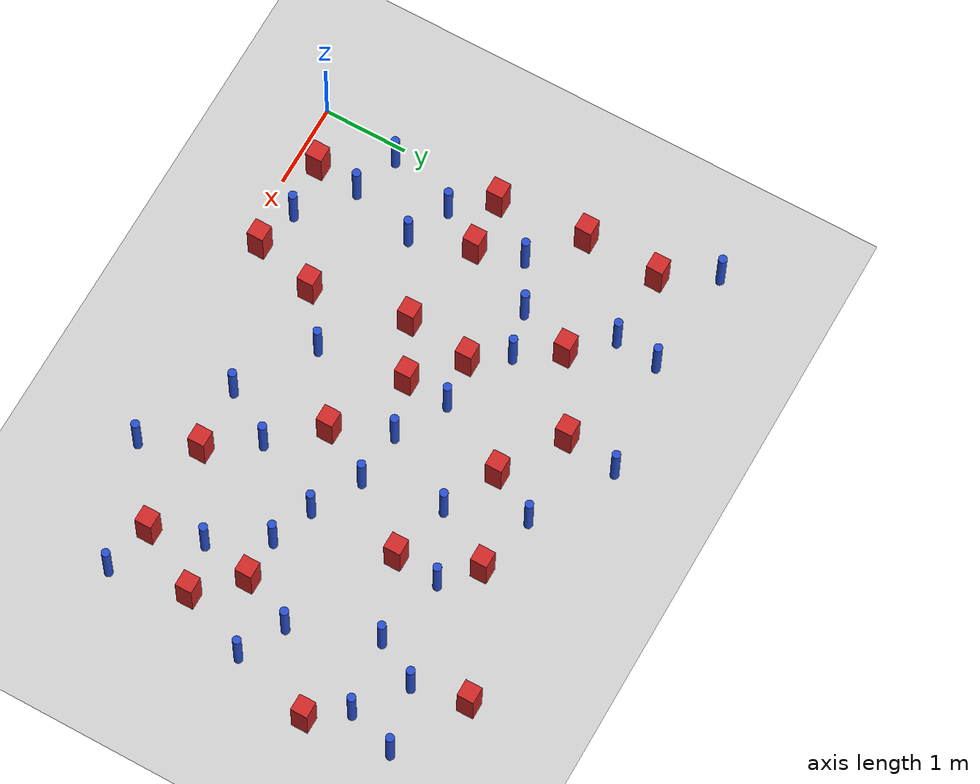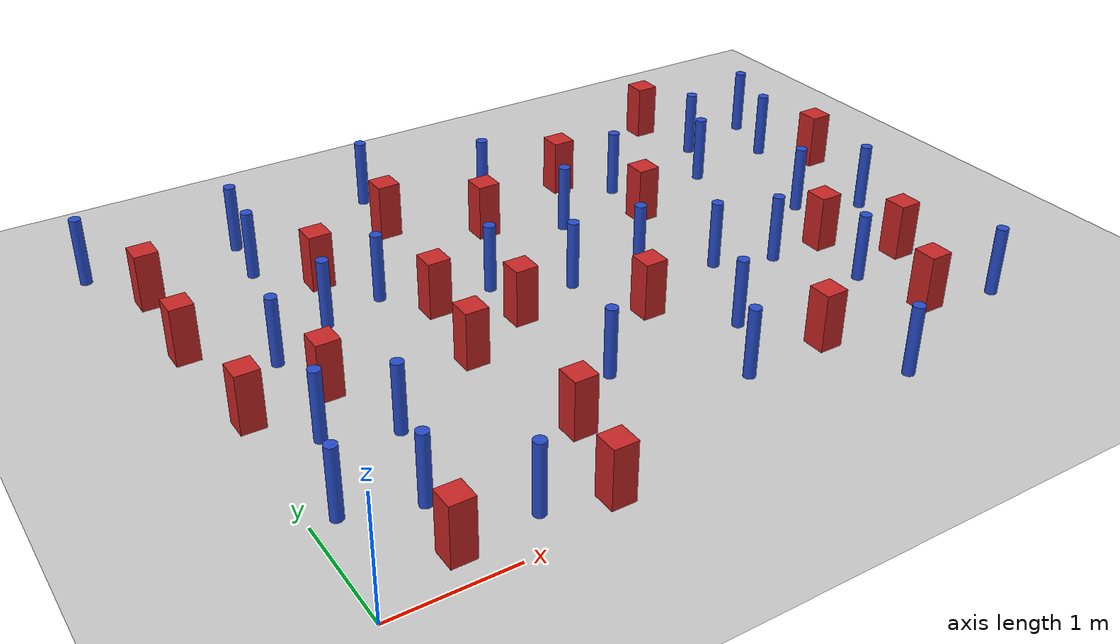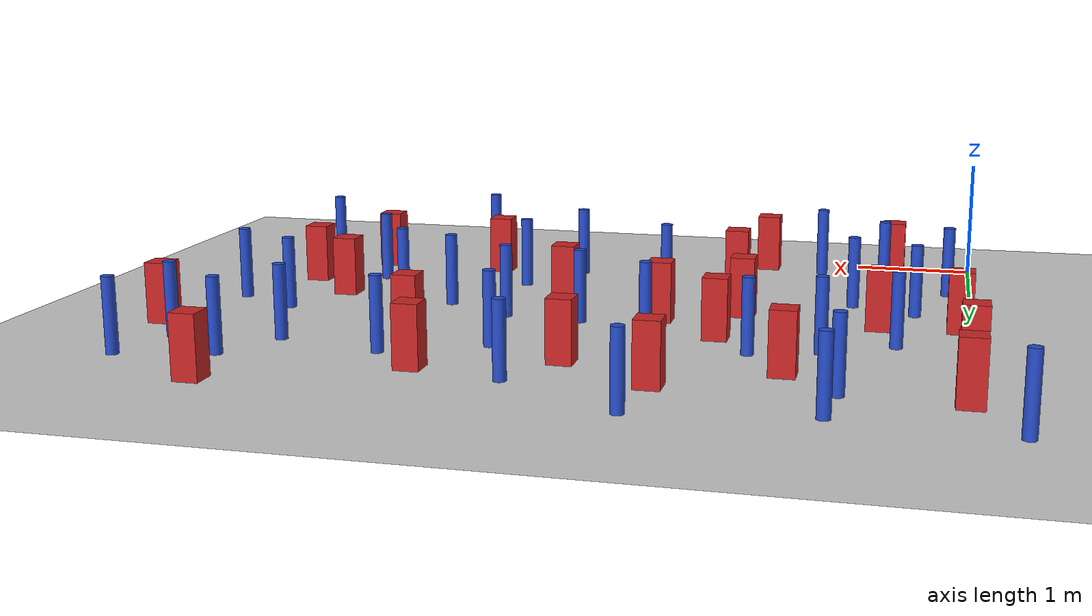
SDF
<sdf version="1.6">
 <world name="default">
  <model name="ground_plane">
   <static>1</static>
   <link name="link">
    <collision name="collision">
     <geometry><plane><normal>0 0 1</normal><size>100 100</size></plane></geometry>
     <surface><friction><ode><mu>100</mu><mu2>50</mu2></ode></friction></surface>
    </collision>
    <visual name="visual">
     <cast_shadows>0</cast_shadows>
     <geometry><plane><normal>0 0 1</normal><size>100 100</size></plane></geometry>
     <material>
      <ambient>1.0 1.0 1.0 1.0</ambient>
      <diffuse>0.8 0.8 0.8 1.0</diffuse>
      <specular>0.01 0.01 0.01 1.000000</specular>
     </material>
    </visual>
   </link>
  </model>
  <model name="square_post_obstacle2">
   <static>true</static>
   <pose>5.34780435043 0.85388809612 8.22691968438e-08 7.2212513382e-06 -7.54495500217e-07 2.29674213826e-05</pose>
   <link name="link">
    <pose>0 0 0.25 0 -0 0</pose>
    <inertial>
     <mass>100</mass>
     <inertia>
      <ixx>0.166667</ixx>
      <ixy>0</ixy>
      <ixz>0</ixz>
      <iyy>0.166667</iyy>
      <iyz>0</iyz>
      <izz>0.166667</izz>
     </inertia>
    </inertial>
    <collision name="collision"><geometry><box><size>.2 .2 .5</size></box></geometry></collision>
    <visual name="visual">
     <geometry><box><size>.2 .2 .5</size></box></geometry>
     <material>
      <script><name>Gazebo/Red</name><uri>file://media/materials/scripts/gazebo.material</uri></script>
     </material>
    </visual>
   </link>
  </model>
  <model name="pole_obstacle4">
   <static>true</static>
   <pose>0.192153176092 0.988772014604 2.88873142074e-08 -9.90536690114e-09 4.60219948983e-07 -1.20965994964e-07</pose>
   <link name="link">
    <pose>0 0 0.3 0 -0 0</pose>
    <inertial>
     <mass>1</mass>
     <inertia><ixx>0.145833</ixx><ixy>0</ixy><ixz>0</ixz><iyy>0.145833</iyy><iyz>0</iyz><izz>0.125</izz></inertia>
    </inertial>
    <collision name="collision">
     <geometry><cylinder><radius>0.05</radius><length>.6</length></cylinder></geometry>
    </collision>
    <visual name="visual">
     <geometry><cylinder><radius>0.05</radius><length>.6</length></cylinder></geometry>
     <material>
      <script><name>Gazebo/Blue</name><uri>file://media/materials/scripts/gazebo.material</uri></script>
     </material>
    </visual>
   </link>
  </model>
  <model name="square_post_obstacle11">
   <static>true</static>
   <pose>5.31267235231 2.07348907233 8.22691968438e-08 7.2212513382e-06 -7.54495500217e-07 2.29674213826e-05</pose>
   <link name="link">
    <pose>0 0 0.25 0 -0 0</pose>
    <inertial>
     <mass>100</mass>
     <inertia>
      <ixx>0.166667</ixx>
      <ixy>0</ixy>
      <ixz>0</ixz>
      <iyy>0.166667</iyy>
      <iyz>0</iyz>
      <izz>0.166667</izz>
     </inertia>
    </inertial>
    <collision name="collision"><geometry><box><size>.2 .2 .5</size></box></geometry></collision>
    <visual name="visual">
     <geometry><box><size>.2 .2 .5</size></box></geometry>
     <material>
      <script><name>Gazebo/Red</name><uri>file://media/materials/scripts/gazebo.material</uri></script>
     </material>
    </visual>
   </link>
  </model>
  <model name="pole_obstacle8">
   <static>true</static>
   <pose>3.58204514085 3.50767078922 2.88873142074e-08 -9.90536690232e-09 4.6021994898e-07 -1.20965994968e-07</pose>
   <link name="link">
    <pose>0 0 0.3 0 -0 0</pose>
    <inertial>
     <mass>1</mass>
     <inertia><ixx>0.145833</ixx><ixy>0</ixy><ixz>0</ixz><iyy>0.145833</iyy><iyz>0</iyz><izz>0.125</izz></inertia>
    </inertial>
    <collision name="collision">
     <geometry><cylinder><radius>0.05</radius><length>.6</length></cylinder></geometry>
    </collision>
    <visual name="visual">
     <geometry><cylinder><radius>0.05</radius><length>.6</length></cylinder></geometry>
     <material>
      <script><name>Gazebo/Blue</name><uri>file://media/materials/scripts/gazebo.material</uri></script>
     </material>
    </visual>
   </link>
  </model>
  <model name="square_post_obstacle22">
   <static>true</static>
   <pose>2.0303652165 0.946268241063 8.22691968438e-08 7.2212513382e-06 -7.54495500217e-07 2.29674213826e-05</pose>
   <link name="link">
    <pose>0 0 0.25 0 -0 0</pose>
    <inertial>
     <mass>100</mass>
     <inertia>
      <ixx>0.166667</ixx>
      <ixy>0</ixy>
      <ixz>0</ixz>
      <iyy>0.166667</iyy>
      <iyz>0</iyz>
      <izz>0.166667</izz>
     </inertia>
    </inertial>
    <collision name="collision"><geometry><box><size>.2 .2 .5</size></box></geometry></collision>
    <visual name="visual">
     <geometry><box><size>.2 .2 .5</size></box></geometry>
     <material>
      <script><name>Gazebo/Red</name><uri>file://media/materials/scripts/gazebo.material</uri></script>
     </material>
    </visual>
   </link>
  </model>
  <model name="pole_obstacle15">
   <static>true</static>
   <pose>5.95249702064 0.702436298179 2.88873142074e-08 -9.90536689837e-09 4.60219948989e-07 -1.2096599496e-07</pose>
   <link name="link">
    <pose>0 0 0.3 0 -0 0</pose>
    <inertial>
     <mass>1</mass>
     <inertia><ixx>0.145833</ixx><ixy>0</ixy><ixz>0</ixz><iyy>0.145833</iyy><iyz>0</iyz><izz>0.125</izz></inertia>
    </inertial>
    <collision name="collision">
     <geometry><cylinder><radius>0.05</radius><length>.6</length></cylinder></geometry>
    </collision>
    <visual name="visual">
     <geometry><cylinder><radius>0.05</radius><length>.6</length></cylinder></geometry>
     <material>
      <script><name>Gazebo/Blue</name><uri>file://media/materials/scripts/gazebo.material</uri></script>
     </material>
    </visual>
   </link>
  </model>
  <model name="pole_obstacle23">
   <static>true</static>
   <pose>3.24662569594 4.36869033312 2.88873142074e-08 -9.90536689859e-09 4.60219948989e-07 -1.20965994961e-07</pose>
   <link name="link">
    <pose>0 0 0.3 0 -0 0</pose>
    <inertial>
     <mass>1</mass>
     <inertia><ixx>0.145833</ixx><ixy>0</ixy><ixz>0</ixz><iyy>0.145833</iyy><iyz>0</iyz><izz>0.125</izz></inertia>
    </inertial>
    <collision name="collision">
     <geometry><cylinder><radius>0.05</radius><length>.6</length></cylinder></geometry>
    </collision>
    <visual name="visual">
     <geometry><cylinder><radius>0.05</radius><length>.6</length></cylinder></geometry>
     <material>
      <script><name>Gazebo/Blue</name><uri>file://media/materials/scripts/gazebo.material</uri></script>
     </material>
    </visual>
   </link>
  </model>
  <model name="pole_obstacle24">
   <static>true</static>
   <pose>1.32390160351 0.333941000089 2.88873142074e-08 -9.90536689733e-09 4.60219948992e-07 -1.20965994959e-07</pose>
   <link name="link">
    <pose>0 0 0.3 0 -0 0</pose>
    <inertial>
     <mass>1</mass>
     <inertia><ixx>0.145833</ixx><ixy>0</ixy><ixz>0</ixz><iyy>0.145833</iyy><iyz>0</iyz><izz>0.125</izz></inertia>
    </inertial>
    <collision name="collision">
     <geometry><cylinder><radius>0.05</radius><length>.6</length></cylinder></geometry>
    </collision>
    <visual name="visual">
     <geometry><cylinder><radius>0.05</radius><length>.6</length></cylinder></geometry>
     <material>
      <script><name>Gazebo/Blue</name><uri>file://media/materials/scripts/gazebo.material</uri></script>
     </material>
    </visual>
   </link>
  </model>
  <model name="square_post_obstacle36">
   <static>true</static>
   <pose>4.30566705517 3.32903848314 8.22691968438e-08 7.2212513382e-06 -7.54495500217e-07 2.29674213826e-05</pose>
   <link name="link">
    <pose>0 0 0.25 0 -0 0</pose>
    <inertial>
     <mass>100</mass>
     <inertia>
      <ixx>0.166667</ixx>
      <ixy>0</ixy>
      <ixz>0</ixz>
      <iyy>0.166667</iyy>
      <iyz>0</iyz>
      <izz>0.166667</izz>
     </inertia>
    </inertial>
    <collision name="collision"><geometry><box><size>.2 .2 .5</size></box></geometry></collision>
    <visual name="visual">
     <geometry><box><size>.2 .2 .5</size></box></geometry>
     <material>
      <script><name>Gazebo/Red</name><uri>file://media/materials/scripts/gazebo.material</uri></script>
     </material>
    </visual>
   </link>
  </model>
  <model name="pole_obstacle38">
   <static>true</static>
   <pose>4.29586392627 2.26824871672 2.88873142074e-08 -9.90536690245e-09 4.6021994898e-07 -1.20965994966e-07</pose>
   <link name="link">
    <pose>0 0 0.3 0 -0 0</pose>
    <inertial>
     <mass>1</mass>
     <inertia><ixx>0.145833</ixx><ixy>0</ixy><ixz>0</ixz><iyy>0.145833</iyy><iyz>0</iyz><izz>0.125</izz></inertia>
    </inertial>
    <collision name="collision">
     <geometry><cylinder><radius>0.05</radius><length>.6</length></cylinder></geometry>
    </collision>
    <visual name="visual">
     <geometry><cylinder><radius>0.05</radius><length>.6</length></cylinder></geometry>
     <material>
      <script><name>Gazebo/Blue</name><uri>file://media/materials/scripts/gazebo.material</uri></script>
     </material>
    </visual>
   </link>
  </model>
  <model name="pole_obstacle39">
   <static>true</static>
   <pose>0.965273400514 1.58977351695 2.88873142074e-08 -9.90536690202e-09 4.6021994898e-07 -1.20965994965e-07</pose>
   <link name="link">
    <pose>0 0 0.3 0 -0 0</pose>
    <inertial>
     <mass>1</mass>
     <inertia><ixx>0.145833</ixx><ixy>0</ixy><ixz>0</ixz><iyy>0.145833</iyy><iyz>0</iyz><izz>0.125</izz></inertia>
    </inertial>
    <collision name="collision">
     <geometry><cylinder><radius>0.05</radius><length>.6</length></cylinder></geometry>
    </collision>
    <visual name="visual">
     <geometry><cylinder><radius>0.05</radius><length>.6</length></cylinder></geometry>
     <material>
      <script><name>Gazebo/Blue</name><uri>file://media/materials/scripts/gazebo.material</uri></script>
     </material>
    </visual>
   </link>
  </model>
  <model name="square_post_obstacle47">
   <static>true</static>
   <pose>0.721170439432 2.29256865752 8.22691968438e-08 7.2212513382e-06 -7.54495500217e-07 2.29674213826e-05</pose>
   <link name="link">
    <pose>0 0 0.25 0 -0 0</pose>
    <inertial>
     <mass>100</mass>
     <inertia>
      <ixx>0.166667</ixx>
      <ixy>0</ixy>
      <ixz>0</ixz>
      <iyy>0.166667</iyy>
      <iyz>0</iyz>
      <izz>0.166667</izz>
     </inertia>
    </inertial>
    <collision name="collision"><geometry><box><size>.2 .2 .5</size></box></geometry></collision>
    <visual name="visual">
     <geometry><box><size>.2 .2 .5</size></box></geometry>
     <material>
      <script><name>Gazebo/Red</name><uri>file://media/materials/scripts/gazebo.material</uri></script>
     </material>
    </visual>
   </link>
  </model>
  <model name="pole_obstacle52">
   <static>true</static>
   <pose>4.51796822195 0.217038154132 2.88873142074e-08 -9.90536689438e-09 4.60219948999e-07 -1.20965994956e-07</pose>
   <link name="link">
    <pose>0 0 0.3 0 -0 0</pose>
    <inertial>
     <mass>1</mass>
     <inertia><ixx>0.145833</ixx><ixy>0</ixy><ixz>0</ixz><iyy>0.145833</iyy><iyz>0</iyz><izz>0.125</izz></inertia>
    </inertial>
    <collision name="collision">
     <geometry><cylinder><radius>0.05</radius><length>.6</length></cylinder></geometry>
    </collision>
    <visual name="visual">
     <geometry><cylinder><radius>0.05</radius><length>.6</length></cylinder></geometry>
     <material>
      <script><name>Gazebo/Blue</name><uri>file://media/materials/scripts/gazebo.material</uri></script>
     </material>
    </visual>
   </link>
  </model>
  <model name="square_post_obstacle60">
   <static>true</static>
   <pose>3.37651391756 1.96179915454 8.22691968438e-08 7.2212513382e-06 -7.54495500217e-07 2.29674213826e-05</pose>
   <link name="link">
    <pose>0 0 0.25 0 -0 0</pose>
    <inertial>
     <mass>100</mass>
     <inertia>
      <ixx>0.166667</ixx>
      <ixy>0</ixy>
      <ixz>0</ixz>
      <iyy>0.166667</iyy>
      <iyz>0</iyz>
      <izz>0.166667</izz>
     </inertia>
    </inertial>
    <collision name="collision"><geometry><box><size>.2 .2 .5</size></box></geometry></collision>
    <visual name="visual">
     <geometry><box><size>.2 .2 .5</size></box></geometry>
     <material>
      <script><name>Gazebo/Red</name><uri>file://media/materials/scripts/gazebo.material</uri></script>
     </material>
    </visual>
   </link>
  </model>
  <model name="pole_obstacle62">
   <static>true</static>
   <pose>0.744388032798 0.809611689987 2.88873142074e-08 -9.90536689967e-09 4.60219948986e-07 -1.20965994963e-07</pose>
   <link name="link">
    <pose>0 0 0.3 0 -0 0</pose>
    <inertial>
     <mass>1</mass>
     <inertia><ixx>0.145833</ixx><ixy>0</ixy><ixz>0</ixz><iyy>0.145833</iyy><iyz>0</iyz><izz>0.125</izz></inertia>
    </inertial>
    <collision name="collision">
     <geometry><cylinder><radius>0.05</radius><length>.6</length></cylinder></geometry>
    </collision>
    <visual name="visual">
     <geometry><cylinder><radius>0.05</radius><length>.6</length></cylinder></geometry>
     <material>
      <script><name>Gazebo/Blue</name><uri>file://media/materials/scripts/gazebo.material</uri></script>
     </material>
    </visual>
   </link>
  </model>
  <model name="pole_obstacle65">
   <static>true</static>
   <pose>-0.316582740102 4.81602739654 2.88873142074e-08 -9.90536689683e-09 4.60219948993e-07 -1.20965994957e-07</pose>
   <link name="link">
    <pose>0 0 0.3 0 -0 0</pose>
    <inertial>
     <mass>1</mass>
     <inertia><ixx>0.145833</ixx><ixy>0</ixy><ixz>0</ixz><iyy>0.145833</iyy><iyz>0</iyz><izz>0.125</izz></inertia>
    </inertial>
    <collision name="collision">
     <geometry><cylinder><radius>0.05</radius><length>.6</length></cylinder></geometry>
    </collision>
    <visual name="visual">
     <geometry><cylinder><radius>0.05</radius><length>.6</length></cylinder></geometry>
     <material>
      <script><name>Gazebo/Blue</name><uri>file://media/materials/scripts/gazebo.material</uri></script>
     </material>
    </visual>
   </link>
  </model>
  <model name="square_post_obstacle68">
   <static>true</static>
   <pose>5.38333848226 4.83043084179 8.22691968438e-08 7.2212513382e-06 -7.54495500217e-07 2.29674213826e-05</pose>
   <link name="link">
    <pose>0 0 0.25 0 -0 0</pose>
    <inertial>
     <mass>100</mass>
     <inertia>
      <ixx>0.166667</ixx>
      <ixy>0</ixy>
      <ixz>0</ixz>
      <iyy>0.166667</iyy>
      <iyz>0</iyz>
      <izz>0.166667</izz>
     </inertia>
    </inertial>
    <collision name="collision"><geometry><box><size>.2 .2 .5</size></box></geometry></collision>
    <visual name="visual">
     <geometry><box><size>.2 .2 .5</size></box></geometry>
     <material>
      <script><name>Gazebo/Red</name><uri>file://media/materials/scripts/gazebo.material</uri></script>
     </material>
    </visual>
   </link>
  </model>
  <model name="pole_obstacle66">
   <static>true</static>
   <pose>0.961404379099 4.702797731 2.88873142074e-08 -9.90536689421e-09 4.60219948999e-07 -1.20965994953e-07</pose>
   <link name="link">
    <pose>0 0 0.3 0 -0 0</pose>
    <inertial>
     <mass>1</mass>
     <inertia><ixx>0.145833</ixx><ixy>0</ixy><ixz>0</ixz><iyy>0.145833</iyy><iyz>0</iyz><izz>0.125</izz></inertia>
    </inertial>
    <collision name="collision">
     <geometry><cylinder><radius>0.05</radius><length>.6</length></cylinder></geometry>
    </collision>
    <visual name="visual">
     <geometry><cylinder><radius>0.05</radius><length>.6</length></cylinder></geometry>
     <material>
      <script><name>Gazebo/Blue</name><uri>file://media/materials/scripts/gazebo.material</uri></script>
     </material>
    </visual>
   </link>
  </model>
  <model name="pole_obstacle69">
   <static>true</static>
   <pose>6.12167391186 2.41760553683 2.88873142074e-08 -9.90536690245e-09 4.6021994898e-07 -1.20965994966e-07</pose>
   <link name="link">
    <pose>0 0 0.3 0 -0 0</pose>
    <inertial>
     <mass>1</mass>
     <inertia><ixx>0.145833</ixx><ixy>0</ixy><ixz>0</ixz><iyy>0.145833</iyy><iyz>0</iyz><izz>0.125</izz></inertia>
    </inertial>
    <collision name="collision">
     <geometry><cylinder><radius>0.05</radius><length>.6</length></cylinder></geometry>
    </collision>
    <visual name="visual">
     <geometry><cylinder><radius>0.05</radius><length>.6</length></cylinder></geometry>
     <material>
      <script><name>Gazebo/Blue</name><uri>file://media/materials/scripts/gazebo.material</uri></script>
     </material>
    </visual>
   </link>
  </model>
  <model name="pole_obstacle75">
   <static>true</static>
   <pose>2.28297909926 4.90512843658 2.88873142074e-08 -9.90536689859e-09 4.60219948989e-07 -1.20965994961e-07</pose>
   <link name="link">
    <pose>0 0 0.3 0 -0 0</pose>
    <inertial>
     <mass>1</mass>
     <inertia><ixx>0.145833</ixx><ixy>0</ixy><ixz>0</ixz><iyy>0.145833</iyy><iyz>0</iyz><izz>0.125</izz></inertia>
    </inertial>
    <collision name="collision">
     <geometry><cylinder><radius>0.05</radius><length>.6</length></cylinder></geometry>
    </collision>
    <visual name="visual">
     <geometry><cylinder><radius>0.05</radius><length>.6</length></cylinder></geometry>
     <material>
      <script><name>Gazebo/Blue</name><uri>file://media/materials/scripts/gazebo.material</uri></script>
     </material>
    </visual>
   </link>
  </model>
  <model name="square_post_obstacle77">
   <static>true</static>
   <pose>1.82946089808 2.09630234504 8.22691968438e-08 7.2212513382e-06 -7.54495500217e-07 2.29674213826e-05</pose>
   <link name="link">
    <pose>0 0 0.25 0 -0 0</pose>
    <inertial>
     <mass>100</mass>
     <inertia>
      <ixx>0.166667</ixx>
      <ixy>0</ixy>
      <ixz>0</ixz>
      <iyy>0.166667</iyy>
      <iyz>0</iyz>
      <izz>0.166667</izz>
     </inertia>
    </inertial>
    <collision name="collision"><geometry><box><size>.2 .2 .5</size></box></geometry></collision>
    <visual name="visual">
     <geometry><box><size>.2 .2 .5</size></box></geometry>
     <material>
      <script><name>Gazebo/Red</name><uri>file://media/materials/scripts/gazebo.material</uri></script>
     </material>
    </visual>
   </link>
  </model>
  <model name="pole_obstacle81">
   <static>true</static>
   <pose>4.7995191095 2.08298735307 2.88873142074e-08 -9.90536690245e-09 4.6021994898e-07 -1.20965994966e-07</pose>
   <link name="link">
    <pose>0 0 0.3 0 -0 0</pose>
    <inertial>
     <mass>1</mass>
     <inertia><ixx>0.145833</ixx><ixy>0</ixy><ixz>0</ixz><iyy>0.145833</iyy><iyz>0</iyz><izz>0.125</izz></inertia>
    </inertial>
    <collision name="collision">
     <geometry><cylinder><radius>0.05</radius><length>.6</length></cylinder></geometry>
    </collision>
    <visual name="visual">
     <geometry><cylinder><radius>0.05</radius><length>.6</length></cylinder></geometry>
     <material>
      <script><name>Gazebo/Blue</name><uri>file://media/materials/scripts/gazebo.material</uri></script>
     </material>
    </visual>
   </link>
  </model>
  <model name="pole_obstacle85">
   <static>true</static>
   <pose>6.08488184216 3.79494003495 2.88873142074e-08 -9.90536690245e-09 4.6021994898e-07 -1.20965994966e-07</pose>
   <link name="link">
    <pose>0 0 0.3 0 -0 0</pose>
    <inertial>
     <mass>1</mass>
     <inertia><ixx>0.145833</ixx><ixy>0</ixy><ixz>0</ixz><iyy>0.145833</iyy><iyz>0</iyz><izz>0.125</izz></inertia>
    </inertial>
    <collision name="collision">
     <geometry><cylinder><radius>0.05</radius><length>.6</length></cylinder></geometry>
    </collision>
    <visual name="visual">
     <geometry><cylinder><radius>0.05</radius><length>.6</length></cylinder></geometry>
     <material>
      <script><name>Gazebo/Blue</name><uri>file://media/materials/scripts/gazebo.material</uri></script>
     </material>
    </visual>
   </link>
  </model>
  <model name="square_post_obstacle81">
   <static>true</static>
   <pose>2.19977318966 4.26711498543 8.22691968438e-08 7.2212513382e-06 -7.54495500217e-07 2.29674213826e-05</pose>
   <link name="link">
    <pose>0 0 0.25 0 -0 0</pose>
    <inertial>
     <mass>100</mass>
     <inertia>
      <ixx>0.166667</ixx>
      <ixy>0</ixy>
      <ixz>0</ixz>
      <iyy>0.166667</iyy>
      <iyz>0</iyz>
      <izz>0.166667</izz>
     </inertia>
    </inertial>
    <collision name="collision"><geometry><box><size>.2 .2 .5</size></box></geometry></collision>
    <visual name="visual">
     <geometry><box><size>.2 .2 .5</size></box></geometry>
     <material>
      <script><name>Gazebo/Red</name><uri>file://media/materials/scripts/gazebo.material</uri></script>
     </material>
    </visual>
   </link>
  </model>
  <model name="pole_obstacle94">
   <static>true</static>
   <pose>3.48643093348 0.825171216627 2.88873142074e-08 -9.90536689285e-09 4.60219949002e-07 -1.20965994953e-07</pose>
   <link name="link">
    <pose>0 0 0.3 0 -0 0</pose>
    <inertial>
     <mass>1</mass>
     <inertia><ixx>0.145833</ixx><ixy>0</ixy><ixz>0</ixz><iyy>0.145833</iyy><iyz>0</iyz><izz>0.125</izz></inertia>
    </inertial>
    <collision name="collision">
     <geometry><cylinder><radius>0.05</radius><length>.6</length></cylinder></geometry>
    </collision>
    <visual name="visual">
     <geometry><cylinder><radius>0.05</radius><length>.6</length></cylinder></geometry>
     <material>
      <script><name>Gazebo/Blue</name><uri>file://media/materials/scripts/gazebo.material</uri></script>
     </material>
    </visual>
   </link>
  </model>
  <model name="pole_obstacle100">
   <static>true</static>
   <pose>3.8665311638 1.42142669381 2.88873142074e-08 -9.90536689395e-09 4.60219949e-07 -1.20965994953e-07</pose>
   <link name="link">
    <pose>0 0 0.3 0 -0 0</pose>
    <inertial>
     <mass>1</mass>
     <inertia><ixx>0.145833</ixx><ixy>0</ixy><ixz>0</ixz><iyy>0.145833</iyy><iyz>0</iyz><izz>0.125</izz></inertia>
    </inertial>
    <collision name="collision">
     <geometry><cylinder><radius>0.05</radius><length>.6</length></cylinder></geometry>
    </collision>
    <visual name="visual">
     <geometry><cylinder><radius>0.05</radius><length>.6</length></cylinder></geometry>
     <material>
      <script><name>Gazebo/Blue</name><uri>file://media/materials/scripts/gazebo.material</uri></script>
     </material>
    </visual>
   </link>
  </model>
  <model name="square_post_obstacle90">
   <static>true</static>
   <pose>1.9395156744 2.8786802639 8.22691968438e-08 7.2212513382e-06 -7.54495500217e-07 2.29674213826e-05</pose>
   <link name="link">
    <pose>0 0 0.25 0 -0 0</pose>
    <inertial>
     <mass>100</mass>
     <inertia>
      <ixx>0.166667</ixx>
      <ixy>0</ixy>
      <ixz>0</ixz>
      <iyy>0.166667</iyy>
      <iyz>0</iyz>
      <izz>0.166667</izz>
     </inertia>
    </inertial>
    <collision name="collision"><geometry><box><size>.2 .2 .5</size></box></geometry></collision>
    <visual name="visual">
     <geometry><box><size>.2 .2 .5</size></box></geometry>
     <material>
      <script><name>Gazebo/Red</name><uri>file://media/materials/scripts/gazebo.material</uri></script>
     </material>
    </visual>
   </link>
  </model>
  <model name="pole_obstacle104">
   <static>true</static>
   <pose>1.64093453608 3.28373927601 2.88873142074e-08 -9.90536689791e-09 4.6021994899e-07 -1.20965994959e-07</pose>
   <link name="link">
    <pose>0 0 0.3 0 -0 0</pose>
    <inertial>
     <mass>1</mass>
     <inertia><ixx>0.145833</ixx><ixy>0</ixy><ixz>0</ixz><iyy>0.145833</iyy><iyz>0</iyz><izz>0.125</izz></inertia>
    </inertial>
    <collision name="collision">
     <geometry><cylinder><radius>0.05</radius><length>.6</length></cylinder></geometry>
    </collision>
    <visual name="visual">
     <geometry><cylinder><radius>0.05</radius><length>.6</length></cylinder></geometry>
     <material>
      <script><name>Gazebo/Blue</name><uri>file://media/materials/scripts/gazebo.material</uri></script>
     </material>
    </visual>
   </link>
  </model>
  <model name="square_post_obstacle94">
   <static>true</static>
   <pose>0.679326115636 0.277328758912 8.22691968438e-08 7.22125133819e-06 -7.54495500217e-07 2.29674213826e-05</pose>
   <link name="link">
    <pose>0 0 0.25 0 -0 0</pose>
    <inertial>
     <mass>100</mass>
     <inertia>
      <ixx>0.166667</ixx>
      <ixy>0</ixy>
      <ixz>0</ixz>
      <iyy>0.166667</iyy>
      <iyz>0</iyz>
      <izz>0.166667</izz>
     </inertia>
    </inertial>
    <collision name="collision"><geometry><box><size>.2 .2 .5</size></box></geometry></collision>
    <visual name="visual">
     <geometry><box><size>.2 .2 .5</size></box></geometry>
     <material>
      <script><name>Gazebo/Red</name><uri>file://media/materials/scripts/gazebo.material</uri></script>
     </material>
    </visual>
   </link>
  </model>
  <model name="square_post_obstacle95">
   <static>true</static>
   <pose>1.324205839 3.76675051798 8.22691968438e-08 7.2212513382e-06 -7.54495500217e-07 2.29674213826e-05</pose>
   <link name="link">
    <pose>0 0 0.25 0 -0 0</pose>
    <inertial>
     <mass>100</mass>
     <inertia>
      <ixx>0.166667</ixx>
      <ixy>0</ixy>
      <ixz>0</ixz>
      <iyy>0.166667</iyy>
      <iyz>0</iyz>
      <izz>0.166667</izz>
     </inertia>
    </inertial>
    <collision name="collision"><geometry><box><size>.2 .2 .5</size></box></geometry></collision>
    <visual name="visual">
     <geometry><box><size>.2 .2 .5</size></box></geometry>
     <material>
      <script><name>Gazebo/Red</name><uri>file://media/materials/scripts/gazebo.material</uri></script>
     </material>
    </visual>
   </link>
  </model>
  <model name="pole_obstacle111">
   <static>true</static>
   <pose>5.59260603231 2.69238489784 2.88873142074e-08 -9.90536690245e-09 4.6021994898e-07 -1.20965994966e-07</pose>
   <link name="link">
    <pose>0 0 0.3 0 -0 0</pose>
    <inertial>
     <mass>1</mass>
     <inertia><ixx>0.145833</ixx><ixy>0</ixy><ixz>0</ixz><iyy>0.145833</iyy><iyz>0</iyz><izz>0.125</izz></inertia>
    </inertial>
    <collision name="collision">
     <geometry><cylinder><radius>0.05</radius><length>.6</length></cylinder></geometry>
    </collision>
    <visual name="visual">
     <geometry><cylinder><radius>0.05</radius><length>.6</length></cylinder></geometry>
     <material>
      <script><name>Gazebo/Blue</name><uri>file://media/materials/scripts/gazebo.material</uri></script>
     </material>
    </visual>
   </link>
  </model>
  <model name="pole_obstacle120">
   <static>true</static>
   <pose>1.10851612809 3.13704941856 2.88873142074e-08 -9.90536689791e-09 4.6021994899e-07 -1.20965994959e-07</pose>
   <link name="link">
    <pose>0 0 0.3 0 -0 0</pose>
    <inertial>
     <mass>1</mass>
     <inertia><ixx>0.145833</ixx><ixy>0</ixy><ixz>0</ixz><iyy>0.145833</iyy><iyz>0</iyz><izz>0.125</izz></inertia>
    </inertial>
    <collision name="collision">
     <geometry><cylinder><radius>0.05</radius><length>.6</length></cylinder></geometry>
    </collision>
    <visual name="visual">
     <geometry><cylinder><radius>0.05</radius><length>.6</length></cylinder></geometry>
     <material>
      <script><name>Gazebo/Blue</name><uri>file://media/materials/scripts/gazebo.material</uri></script>
     </material>
    </visual>
   </link>
  </model>
  <model name="square_post_obstacle112">
   <static>true</static>
   <pose>5.77447518229 1.60664170605 8.22691968438e-08 7.2212513382e-06 -7.54495500217e-07 2.29674213826e-05</pose>
   <link name="link">
    <pose>0 0 0.25 0 -0 0</pose>
    <inertial>
     <mass>100</mass>
     <inertia>
      <ixx>0.166667</ixx>
      <ixy>0</ixy>
      <ixz>0</ixz>
      <iyy>0.166667</iyy>
      <iyz>0</iyz>
      <izz>0.166667</izz>
     </inertia>
    </inertial>
    <collision name="collision"><geometry><box><size>.2 .2 .5</size></box></geometry></collision>
    <visual name="visual">
     <geometry><box><size>.2 .2 .5</size></box></geometry>
     <material>
      <script><name>Gazebo/Red</name><uri>file://media/materials/scripts/gazebo.material</uri></script>
     </material>
    </visual>
   </link>
  </model>
  <model name="pole_obstacle124">
   <static>true</static>
   <pose>3.72534389379 2.57066808256 2.88873142074e-08 -9.90536690232e-09 4.6021994898e-07 -1.20965994968e-07</pose>
   <link name="link">
    <pose>0 0 0.3 0 -0 0</pose>
    <inertial>
     <mass>1</mass>
     <inertia><ixx>0.145833</ixx><ixy>0</ixy><ixz>0</ixz><iyy>0.145833</iyy><iyz>0</iyz><izz>0.125</izz></inertia>
    </inertial>
    <collision name="collision">
     <geometry><cylinder><radius>0.05</radius><length>.6</length></cylinder></geometry>
    </collision>
    <visual name="visual">
     <geometry><cylinder><radius>0.05</radius><length>.6</length></cylinder></geometry>
     <material>
      <script><name>Gazebo/Blue</name><uri>file://media/materials/scripts/gazebo.material</uri></script>
     </material>
    </visual>
   </link>
  </model>
  <model name="pole_obstacle130">
   <static>true</static>
   <pose>0.447201711505 1.80578335529 2.88873142074e-08 -9.90536689905e-09 4.60219948988e-07 -1.2096599496e-07</pose>
   <link name="link">
    <pose>0 0 0.3 0 -0 0</pose>
    <inertial>
     <mass>1</mass>
     <inertia><ixx>0.145833</ixx><ixy>0</ixy><ixz>0</ixz><iyy>0.145833</iyy><iyz>0</iyz><izz>0.125</izz></inertia>
    </inertial>
    <collision name="collision">
     <geometry><cylinder><radius>0.05</radius><length>.6</length></cylinder></geometry>
    </collision>
    <visual name="visual">
     <geometry><cylinder><radius>0.05</radius><length>.6</length></cylinder></geometry>
     <material>
      <script><name>Gazebo/Blue</name><uri>file://media/materials/scripts/gazebo.material</uri></script>
     </material>
    </visual>
   </link>
  </model>
  <model name="square_post_obstacle120">
   <static>true</static>
   <pose>0.0310087896847 4.21032335177 8.22691968438e-08 7.2212513382e-06 -7.54495500217e-07 2.29674213826e-05</pose>
   <link name="link">
    <pose>0 0 0.25 0 -0 0</pose>
    <inertial>
     <mass>100</mass>
     <inertia>
      <ixx>0.166667</ixx>
      <ixy>0</ixy>
      <ixz>0</ixz>
      <iyy>0.166667</iyy>
      <iyz>0</iyz>
      <izz>0.166667</izz>
     </inertia>
    </inertial>
    <collision name="collision"><geometry><box><size>.2 .2 .5</size></box></geometry></collision>
    <visual name="visual">
     <geometry><box><size>.2 .2 .5</size></box></geometry>
     <material>
      <script><name>Gazebo/Red</name><uri>file://media/materials/scripts/gazebo.material</uri></script>
     </material>
    </visual>
   </link>
  </model>
  <model name="pole_obstacle140">
   <static>true</static>
   <pose>0.562646882229 2.84165401783 2.88873142074e-08 -9.90536689636e-09 4.60219948994e-07 -1.20965994958e-07</pose>
   <link name="link">
    <pose>0 0 0.3 0 -0 0</pose>
    <inertial>
     <mass>1</mass>
     <inertia><ixx>0.145833</ixx><ixy>0</ixy><ixz>0</ixz><iyy>0.145833</iyy><iyz>0</iyz><izz>0.125</izz></inertia>
    </inertial>
    <collision name="collision">
     <geometry><cylinder><radius>0.05</radius><length>.6</length></cylinder></geometry>
    </collision>
    <visual name="visual">
     <geometry><cylinder><radius>0.05</radius><length>.6</length></cylinder></geometry>
     <material>
      <script><name>Gazebo/Blue</name><uri>file://media/materials/scripts/gazebo.material</uri></script>
     </material>
    </visual>
   </link>
  </model>
  <model name="pole_obstacle144">
   <static>true</static>
   <pose>5.51592460342 4.19202262072 2.88873142074e-08 -9.90536690842e-09 4.60219948965e-07 -1.20965994976e-07</pose>
   <link name="link">
    <pose>0 0 0.3 0 -0 0</pose>
    <inertial>
     <mass>1</mass>
     <inertia><ixx>0.145833</ixx><ixy>0</ixy><ixz>0</ixz><iyy>0.145833</iyy><iyz>0</iyz><izz>0.125</izz></inertia>
    </inertial>
    <collision name="collision">
     <geometry><cylinder><radius>0.05</radius><length>.6</length></cylinder></geometry>
    </collision>
    <visual name="visual">
     <geometry><cylinder><radius>0.05</radius><length>.6</length></cylinder></geometry>
     <material>
      <script><name>Gazebo/Blue</name><uri>file://media/materials/scripts/gazebo.material</uri></script>
     </material>
    </visual>
   </link>
  </model>
  <model name="pole_obstacle146">
   <static>true</static>
   <pose>5.1876209518 1.45865341848 2.88873142074e-08 -9.90536689445e-09 4.60219948999e-07 -1.20965994956e-07</pose>
   <link name="link">
    <pose>0 0 0.3 0 -0 0</pose>
    <inertial>
     <mass>1</mass>
     <inertia><ixx>0.145833</ixx><ixy>0</ixy><ixz>0</ixz><iyy>0.145833</iyy><iyz>0</iyz><izz>0.125</izz></inertia>
    </inertial>
    <collision name="collision">
     <geometry><cylinder><radius>0.05</radius><length>.6</length></cylinder></geometry>
    </collision>
    <visual name="visual">
     <geometry><cylinder><radius>0.05</radius><length>.6</length></cylinder></geometry>
     <material>
      <script><name>Gazebo/Blue</name><uri>file://media/materials/scripts/gazebo.material</uri></script>
     </material>
    </visual>
   </link>
  </model>
  <model name="pole_obstacle153">
   <static>true</static>
   <pose>5.22287290912 3.67295291098 2.88873142074e-08 -9.90536690245e-09 4.6021994898e-07 -1.20965994966e-07</pose>
   <link name="link">
    <pose>0 0 0.3 0 -0 0</pose>
    <inertial>
     <mass>1</mass>
     <inertia><ixx>0.145833</ixx><ixy>0</ixy><ixz>0</ixz><iyy>0.145833</iyy><iyz>0</iyz><izz>0.125</izz></inertia>
    </inertial>
    <collision name="collision">
     <geometry><cylinder><radius>0.05</radius><length>.6</length></cylinder></geometry>
    </collision>
    <visual name="visual">
     <geometry><cylinder><radius>0.05</radius><length>.6</length></cylinder></geometry>
     <material>
      <script><name>Gazebo/Blue</name><uri>file://media/materials/scripts/gazebo.material</uri></script>
     </material>
    </visual>
   </link>
  </model>
  <model name="square_post_obstacle143">
   <static>true</static>
   <pose>2.46272317521 2.41611616032 8.22691968438e-08 7.2212513382e-06 -7.54495500217e-07 2.29674213826e-05</pose>
   <link name="link">
    <pose>0 0 0.25 0 -0 0</pose>
    <inertial>
     <mass>100</mass>
     <inertia>
      <ixx>0.166667</ixx>
      <ixy>0</ixy>
      <ixz>0</ixz>
      <iyy>0.166667</iyy>
      <iyz>0</iyz>
      <izz>0.166667</izz>
     </inertia>
    </inertial>
    <collision name="collision"><geometry><box><size>.2 .2 .5</size></box></geometry></collision>
    <visual name="visual">
     <geometry><box><size>.2 .2 .5</size></box></geometry>
     <material>
      <script><name>Gazebo/Red</name><uri>file://media/materials/scripts/gazebo.material</uri></script>
     </material>
    </visual>
   </link>
  </model>
  <model name="square_post_obstacle148">
   <static>true</static>
   <pose>-0.00120157992876 3.30232142165 8.22691968438e-08 7.2212513382e-06 -7.54495500217e-07 2.29674213826e-05</pose>
   <link name="link">
    <pose>0 0 0.25 0 -0 0</pose>
    <inertial>
     <mass>100</mass>
     <inertia>
      <ixx>0.166667</ixx>
      <ixy>0</ixy>
      <ixz>0</ixz>
      <iyy>0.166667</iyy>
      <iyz>0</iyz>
      <izz>0.166667</izz>
     </inertia>
    </inertial>
    <collision name="collision"><geometry><box><size>.2 .2 .5</size></box></geometry></collision>
    <visual name="visual">
     <geometry><box><size>.2 .2 .5</size></box></geometry>
     <material>
      <script><name>Gazebo/Red</name><uri>file://media/materials/scripts/gazebo.material</uri></script>
     </material>
    </visual>
   </link>
  </model>
  <model name="square_post_obstacle149">
   <static>true</static>
   <pose>3.97505355404 4.20660209829 8.22691968438e-08 7.2212513382e-06 -7.54495500217e-07 2.29674213826e-05</pose>
   <link name="link">
    <pose>0 0 0.25 0 -0 0</pose>
    <inertial>
     <mass>100</mass>
     <inertia>
      <ixx>0.166667</ixx>
      <ixy>0</ixy>
      <ixz>0</ixz>
      <iyy>0.166667</iyy>
      <iyz>0</iyz>
      <izz>0.166667</izz>
     </inertia>
    </inertial>
    <collision name="collision"><geometry><box><size>.2 .2 .5</size></box></geometry></collision>
    <visual name="visual">
     <geometry><box><size>.2 .2 .5</size></box></geometry>
     <material>
      <script><name>Gazebo/Red</name><uri>file://media/materials/scripts/gazebo.material</uri></script>
     </material>
    </visual>
   </link>
  </model>
  <model name="pole_obstacle158">
   <static>true</static>
   <pose>3.08978831406 2.62094691518 2.88873142074e-08 -9.90536690232e-09 4.6021994898e-07 -1.20965994968e-07</pose>
   <link name="link">
    <pose>0 0 0.3 0 -0 0</pose>
    <inertial>
     <mass>1</mass>
     <inertia><ixx>0.145833</ixx><ixy>0</ixy><ixz>0</ixz><iyy>0.145833</iyy><iyz>0</iyz><izz>0.125</izz></inertia>
    </inertial>
    <collision name="collision">
     <geometry><cylinder><radius>0.05</radius><length>.6</length></cylinder></geometry>
    </collision>
    <visual name="visual">
     <geometry><cylinder><radius>0.05</radius><length>.6</length></cylinder></geometry>
     <material>
      <script><name>Gazebo/Blue</name><uri>file://media/materials/scripts/gazebo.material</uri></script>
     </material>
    </visual>
   </link>
  </model>
  <model name="pole_obstacle163">
   <static>true</static>
   <pose>2.60425407489 1.38133183074 2.88873142074e-08 -9.90536689395e-09 4.60219949e-07 -1.20965994953e-07</pose>
   <link name="link">
    <pose>0 0 0.3 0 -0 0</pose>
    <inertial>
     <mass>1</mass>
     <inertia><ixx>0.145833</ixx><ixy>0</ixy><ixz>0</ixz><iyy>0.145833</iyy><iyz>0</iyz><izz>0.125</izz></inertia>
    </inertial>
    <collision name="collision">
     <geometry><cylinder><radius>0.05</radius><length>.6</length></cylinder></geometry>
    </collision>
    <visual name="visual">
     <geometry><cylinder><radius>0.05</radius><length>.6</length></cylinder></geometry>
     <material>
      <script><name>Gazebo/Blue</name><uri>file://media/materials/scripts/gazebo.material</uri></script>
     </material>
    </visual>
   </link>
  </model>
  <model name="pole_obstacle166">
   <static>true</static>
   <pose>4.35791304703 3.86243909085 2.88873142074e-08 -9.90536690245e-09 4.6021994898e-07 -1.20965994966e-07</pose>
   <link name="link">
    <pose>0 0 0.3 0 -0 0</pose>
    <inertial>
     <mass>1</mass>
     <inertia><ixx>0.145833</ixx><ixy>0</ixy><ixz>0</ixz><iyy>0.145833</iyy><iyz>0</iyz><izz>0.125</izz></inertia>
    </inertial>
    <collision name="collision">
     <geometry><cylinder><radius>0.05</radius><length>.6</length></cylinder></geometry>
    </collision>
    <visual name="visual">
     <geometry><cylinder><radius>0.05</radius><length>.6</length></cylinder></geometry>
     <material>
      <script><name>Gazebo/Blue</name><uri>file://media/materials/scripts/gazebo.material</uri></script>
     </material>
    </visual>
   </link>
  </model>
  <model name="pole_obstacle171">
   <static>true</static>
   <pose>2.48672817415 2.93755137671 2.88873142074e-08 -9.90536690232e-09 4.6021994898e-07 -1.20965994968e-07</pose>
   <link name="link">
    <pose>0 0 0.3 0 -0 0</pose>
    <inertial>
     <mass>1</mass>
     <inertia><ixx>0.145833</ixx><ixy>0</ixy><ixz>0</ixz><iyy>0.145833</iyy><iyz>0</iyz><izz>0.125</izz></inertia>
    </inertial>
    <collision name="collision">
     <geometry><cylinder><radius>0.05</radius><length>.6</length></cylinder></geometry>
    </collision>
    <visual name="visual">
     <geometry><cylinder><radius>0.05</radius><length>.6</length></cylinder></geometry>
     <material>
      <script><name>Gazebo/Blue</name><uri>file://media/materials/scripts/gazebo.material</uri></script>
     </material>
    </visual>
   </link>
  </model>
  <model name="square_post_obstacle167">
   <static>true</static>
   <pose>0.090813193671 2.23886944632 8.22691968438e-08 7.22125133819e-06 -7.54495500217e-07 2.29674213826e-05</pose>
   <link name="link">
    <pose>0 0 0.25 0 -0 0</pose>
    <inertial>
     <mass>100</mass>
     <inertia>
      <ixx>0.166667</ixx>
      <ixy>0</ixy>
      <ixz>0</ixz>
      <iyy>0.166667</iyy>
      <iyz>0</iyz>
      <izz>0.166667</izz>
     </inertia>
    </inertial>
    <collision name="collision"><geometry><box><size>.2 .2 .5</size></box></geometry></collision>
    <visual name="visual">
     <geometry><box><size>.2 .2 .5</size></box></geometry>
     <material>
      <script><name>Gazebo/Red</name><uri>file://media/materials/scripts/gazebo.material</uri></script>
     </material>
    </visual>
   </link>
  </model>
  <model name="square_post_obstacle173">
   <static>true</static>
   <pose>4.25231368338 0.866952588225 8.22691968438e-08 7.2212513382e-06 -7.54495500217e-07 2.29674213826e-05</pose>
   <link name="link">
    <pose>0 0 0.25 0 -0 0</pose>
    <inertial>
     <mass>100</mass>
     <inertia>
      <ixx>0.166667</ixx>
      <ixy>0</ixy>
      <ixz>0</ixz>
      <iyy>0.166667</iyy>
      <iyz>0</iyz>
      <izz>0.166667</izz>
     </inertia>
    </inertial>
    <collision name="collision"><geometry><box><size>.2 .2 .5</size></box></geometry></collision>
    <visual name="visual">
     <geometry><box><size>.2 .2 .5</size></box></geometry>
     <material>
      <script><name>Gazebo/Red</name><uri>file://media/materials/scripts/gazebo.material</uri></script>
     </material>
    </visual>
   </link>
  </model>
  <model name="square_post_obstacle194">
   <static>true</static>
   <pose>6.38679538575 3.38064946404 8.22691968438e-08 7.2212513382e-06 -7.54495500217e-07 2.29674213826e-05</pose>
   <link name="link">
    <pose>0 0 0.25 0 -0 0</pose>
    <inertial>
     <mass>100</mass>
     <inertia>
      <ixx>0.166667</ixx>
      <ixy>0</ixy>
      <ixz>0</ixz>
      <iyy>0.166667</iyy>
      <iyz>0</iyz>
      <izz>0.166667</izz>
     </inertia>
    </inertial>
    <collision name="collision"><geometry><box><size>.2 .2 .5</size></box></geometry></collision>
    <visual name="visual">
     <geometry><box><size>.2 .2 .5</size></box></geometry>
     <material>
      <script><name>Gazebo/Red</name><uri>file://media/materials/scripts/gazebo.material</uri></script>
     </material>
    </visual>
   </link>
  </model>
  <model name="square_post_obstacle195">
   <static>true</static>
   <pose>2.93896036189 3.81102346631 8.22691968438e-08 7.2212513382e-06 -7.54495500217e-07 2.29674213826e-05</pose>
   <link name="link">
    <pose>0 0 0.25 0 -0 0</pose>
    <inertial>
     <mass>100</mass>
     <inertia>
      <ixx>0.166667</ixx>
      <ixy>0</ixy>
      <ixz>0</ixz>
      <iyy>0.166667</iyy>
      <iyz>0</iyz>
      <izz>0.166667</izz>
     </inertia>
    </inertial>
    <collision name="collision"><geometry><box><size>.2 .2 .5</size></box></geometry></collision>
    <visual name="visual">
     <geometry><box><size>.2 .2 .5</size></box></geometry>
     <material>
      <script><name>Gazebo/Red</name><uri>file://media/materials/scripts/gazebo.material</uri></script>
     </material>
    </visual>
   </link>
  </model>
  <model name="square_post_obstacle202">
   <static>true</static>
   <pose>1.82932173386 0.197827838191 8.22691968438e-08 7.2212513382e-06 -7.54495500217e-07 2.29674213826e-05</pose>
   <link name="link">
    <pose>0 0 0.25 0 -0 0</pose>
    <inertial>
     <mass>100</mass>
     <inertia>
      <ixx>0.166667</ixx>
      <ixy>0</ixy>
      <ixz>0</ixz>
      <iyy>0.166667</iyy>
      <iyz>0</iyz>
      <izz>0.166667</izz>
     </inertia>
    </inertial>
    <collision name="collision"><geometry><box><size>.2 .2 .5</size></box></geometry></collision>
    <visual name="visual">
     <geometry><box><size>.2 .2 .5</size></box></geometry>
     <material>
      <script><name>Gazebo/Red</name><uri>file://media/materials/scripts/gazebo.material</uri></script>
     </material>
    </visual>
   </link>
  </model>
  <model name="pole_obstacle192">
   <static>true</static>
   <pose>6.27484175964 4.36920919161 2.88873142074e-08 -9.90536690842e-09 4.60219948965e-07 -1.20965994976e-07</pose>
   <link name="link">
    <pose>0 0 0.3 0 -0 0</pose>
    <inertial>
     <mass>1</mass>
     <inertia><ixx>0.145833</ixx><ixy>0</ixy><ixz>0</ixz><iyy>0.145833</iyy><iyz>0</iyz><izz>0.125</izz></inertia>
    </inertial>
    <collision name="collision">
     <geometry><cylinder><radius>0.05</radius><length>.6</length></cylinder></geometry>
    </collision>
    <visual name="visual">
     <geometry><cylinder><radius>0.05</radius><length>.6</length></cylinder></geometry>
     <material>
      <script><name>Gazebo/Blue</name><uri>file://media/materials/scripts/gazebo.material</uri></script>
     </material>
    </visual>
   </link>
  </model>
  <model name="pole_obstacle195">
   <static>true</static>
   <pose>0.908875380658 4.18547052755 2.88873142074e-08 -9.90536689661e-09 4.60219948993e-07 -1.20965994957e-07</pose>
   <link name="link">
    <pose>0 0 0.3 0 -0 0</pose>
    <inertial>
     <mass>1</mass>
     <inertia><ixx>0.145833</ixx><ixy>0</ixy><ixz>0</ixz><iyy>0.145833</iyy><iyz>0</iyz><izz>0.125</izz></inertia>
    </inertial>
    <collision name="collision">
     <geometry><cylinder><radius>0.05</radius><length>.6</length></cylinder></geometry>
    </collision>
    <visual name="visual">
     <geometry><cylinder><radius>0.05</radius><length>.6</length></cylinder></geometry>
     <material>
      <script><name>Gazebo/Blue</name><uri>file://media/materials/scripts/gazebo.material</uri></script>
     </material>
    </visual>
   </link>
  </model>
 </world>
</sdf>
